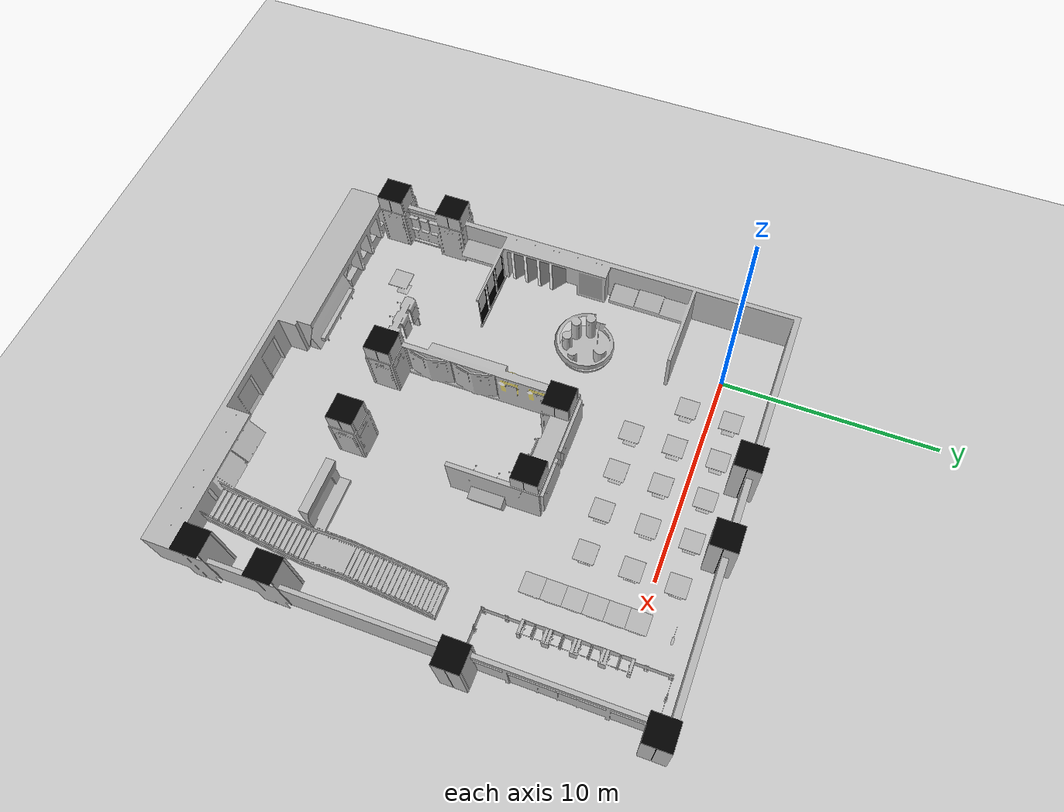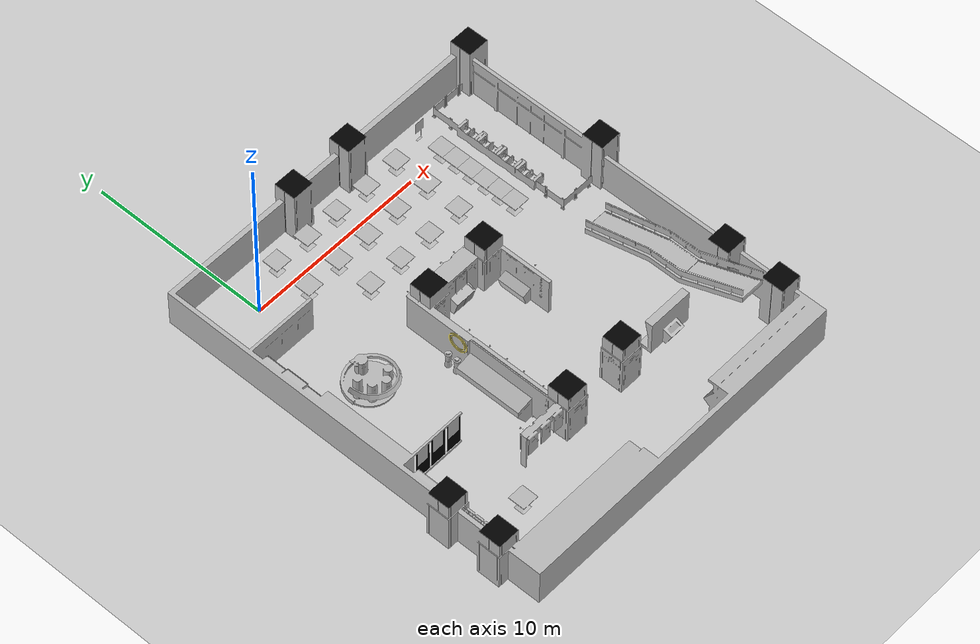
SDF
<sdf version="1.7">
 <world name="default">
  <light name="sun" type="directional">
   <pose>0 0 10 0 -0 0</pose>
   <diffuse>0.8 0.8 0.8 1</diffuse>
   <specular>0.2 0.2 0.2 1</specular>
   <attenuation>
    <range>1000</range>
    <constant>0.9</constant>
    <linear>0.01</linear>
    <quadratic>0.001</quadratic>
   </attenuation>
   <direction>-0.5 0.1 -0.9</direction>
   <spot><inner_angle>0</inner_angle><outer_angle>0</outer_angle><falloff>0</falloff></spot>
  </light>
  <model name="ground_plane">
   <static>1</static>
   <link name="link">
    <collision name="collision">
     <geometry><plane><normal>0 0 1</normal><size>100 100</size></plane></geometry>
     <surface>
      <contact><collide_bitmask>65535</collide_bitmask></contact>
      <friction><ode><mu>100</mu><mu2>50</mu2></ode></friction>
     </surface>
    </collision>
    <visual name="visual">
     <cast_shadows>0</cast_shadows>
     <geometry><plane><normal>0 0 1</normal><size>100 100</size></plane></geometry>
     <material>
      <script><uri>file://media/materials/scripts/gazebo.material</uri><name>Gazebo/Grey</name></script>
     </material>
    </visual>
   </link>
  </model>
  <gravity>0 0 -9.8</gravity>
  <magnetic_field>6e-06 2.3e-05 -4.2e-05</magnetic_field>
  <atmosphere type="adiabatic"/>
  <physics type="ode">
   <max_step_size>0.001</max_step_size>
   <real_time_factor>1</real_time_factor>
   <real_time_update_rate>1000</real_time_update_rate>
  </physics>
  <scene><ambient>0.4 0.4 0.4 1</ambient><background>0.7 0.7 0.7 1</background><shadows>1</shadows></scene>
  <spherical_coordinates>
   <surface_model>EARTH_WGS84</surface_model>
   <latitude_deg>0</latitude_deg>
   <longitude_deg>0</longitude_deg>
   <elevation>0</elevation>
   <heading_deg>0</heading_deg>
  </spherical_coordinates>
  <model name="iscas_museum">
   <link name="link">
    <inertial><mass>15</mass></inertial>
    <collision name="collision">
     <pose>0 0 0 0 0 -1.57</pose>
     <geometry><mesh><uri>model://iscas_museum/meshes/ISCAS_museum.dae</uri></mesh></geometry>
    </collision>
    <visual name="visual">
     <pose>0 0 0 0 0 -1.57</pose>
     <geometry><mesh><uri>model://iscas_museum/meshes/ISCAS_museum.dae</uri></mesh></geometry>
    </visual>
   </link>
   <static>1</static>
   <pose>6.0996 -8.91878 0 0 -0 0</pose>
  </model>
  <model name="cafe_table">
   <static>1</static>
   <link name="link">
    <collision name="surface">
     <pose>0 0 0.755 0 -0 0</pose>
     <geometry><box><size>0.913 0.913 0.04</size></box></geometry>
    </collision>
    <collision name="column">
     <pose>0 0 0.37 0 -0 0</pose>
     <geometry><box><size>0.042 0.042 0.74</size></box></geometry>
    </collision>
    <collision name="base">
     <pose>0 0 0.02 0 -0 0</pose>
     <geometry><box><size>0.56 0.56 0.04</size></box></geometry>
    </collision>
    <visual name="visual">
     <geometry><mesh><uri>model://cafe_table/meshes/cafe_table.dae</uri></mesh></geometry>
    </visual>
   </link>
   <pose>0.066765 -15.8442 0 0 -0 0</pose>
  </model>
  <model name="cafe_table_0">
   <static>1</static>
   <link name="link">
    <collision name="surface">
     <pose>0 0 0.755 0 -0 0</pose>
     <geometry><box><size>0.913 0.913 0.04</size></box></geometry>
    </collision>
    <collision name="column">
     <pose>0 0 0.37 0 -0 0</pose>
     <geometry><box><size>0.042 0.042 0.74</size></box></geometry>
    </collision>
    <collision name="base">
     <pose>0 0 0.02 0 -0 0</pose>
     <geometry><box><size>0.56 0.56 0.04</size></box></geometry>
    </collision>
    <visual name="visual">
     <geometry><mesh><uri>model://cafe_table/meshes/cafe_table.dae</uri></mesh></geometry>
    </visual>
   </link>
   <pose>2.16336 -1.0258 0 0 -0 0</pose>
  </model>
  <model name="cafe_table_1">
   <static>1</static>
   <link name="link">
    <collision name="surface">
     <pose>0 0 0.755 0 -0 0</pose>
     <geometry><box><size>0.913 0.913 0.04</size></box></geometry>
    </collision>
    <collision name="column">
     <pose>0 0 0.37 0 -0 0</pose>
     <geometry><box><size>0.042 0.042 0.74</size></box></geometry>
    </collision>
    <collision name="base">
     <pose>0 0 0.02 0 -0 0</pose>
     <geometry><box><size>0.56 0.56 0.04</size></box></geometry>
    </collision>
    <visual name="visual">
     <geometry><mesh><uri>model://cafe_table/meshes/cafe_table.dae</uri></mesh></geometry>
    </visual>
   </link>
   <pose>4.13185 -1.00544 0 0 -0 0</pose>
  </model>
  <model name="cafe_table_2">
   <static>1</static>
   <link name="link">
    <collision name="surface">
     <pose>0 0 0.755 0 -0 0</pose>
     <geometry><box><size>0.913 0.913 0.04</size></box></geometry>
    </collision>
    <collision name="column">
     <pose>0 0 0.37 0 -0 0</pose>
     <geometry><box><size>0.042 0.042 0.74</size></box></geometry>
    </collision>
    <collision name="base">
     <pose>0 0 0.02 0 -0 0</pose>
     <geometry><box><size>0.56 0.56 0.04</size></box></geometry>
    </collision>
    <visual name="visual">
     <geometry><mesh><uri>model://cafe_table/meshes/cafe_table.dae</uri></mesh></geometry>
    </visual>
   </link>
   <pose>6.06257 -1.02144 0 0 -0 0</pose>
  </model>
  <model name="cafe_table_3">
   <static>1</static>
   <link name="link">
    <collision name="surface">
     <pose>0 0 0.755 0 -0 0</pose>
     <geometry><box><size>0.913 0.913 0.04</size></box></geometry>
    </collision>
    <collision name="column">
     <pose>0 0 0.37 0 -0 0</pose>
     <geometry><box><size>0.042 0.042 0.74</size></box></geometry>
    </collision>
    <collision name="base">
     <pose>0 0 0.02 0 -0 0</pose>
     <geometry><box><size>0.56 0.56 0.04</size></box></geometry>
    </collision>
    <visual name="visual">
     <geometry><mesh><uri>model://cafe_table/meshes/cafe_table.dae</uri></mesh></geometry>
    </visual>
   </link>
   <pose>8.03934 -0.971793 0 0 -0 0</pose>
  </model>
  <model name="cafe_table_4">
   <static>1</static>
   <link name="link">
    <collision name="surface">
     <pose>0 0 0.755 0 -0 0</pose>
     <geometry><box><size>0.913 0.913 0.04</size></box></geometry>
    </collision>
    <collision name="column">
     <pose>0 0 0.37 0 -0 0</pose>
     <geometry><box><size>0.042 0.042 0.74</size></box></geometry>
    </collision>
    <collision name="base">
     <pose>0 0 0.02 0 -0 0</pose>
     <geometry><box><size>0.56 0.56 0.04</size></box></geometry>
    </collision>
    <visual name="visual">
     <geometry><mesh><uri>model://cafe_table/meshes/cafe_table.dae</uri></mesh></geometry>
    </visual>
   </link>
   <pose>10.0303 -0.99222 0 0 -0 0</pose>
  </model>
  <model name="cafe_table_5">
   <static>1</static>
   <link name="link">
    <collision name="surface">
     <pose>0 0 0.755 0 -0 0</pose>
     <geometry><box><size>0.913 0.913 0.04</size></box></geometry>
    </collision>
    <collision name="column">
     <pose>0 0 0.37 0 -0 0</pose>
     <geometry><box><size>0.042 0.042 0.74</size></box></geometry>
    </collision>
    <collision name="base">
     <pose>0 0 0.02 0 -0 0</pose>
     <geometry><box><size>0.56 0.56 0.04</size></box></geometry>
    </collision>
    <visual name="visual">
     <geometry><mesh><uri>model://cafe_table/meshes/cafe_table.dae</uri></mesh></geometry>
    </visual>
   </link>
   <pose>2.1769 0.975185 0 0 -0 0</pose>
  </model>
  <model name="cafe_table_6">
   <static>1</static>
   <link name="link">
    <collision name="surface">
     <pose>0 0 0.755 0 -0 0</pose>
     <geometry><box><size>0.913 0.913 0.04</size></box></geometry>
    </collision>
    <collision name="column">
     <pose>0 0 0.37 0 -0 0</pose>
     <geometry><box><size>0.042 0.042 0.74</size></box></geometry>
    </collision>
    <collision name="base">
     <pose>0 0 0.02 0 -0 0</pose>
     <geometry><box><size>0.56 0.56 0.04</size></box></geometry>
    </collision>
    <visual name="visual">
     <geometry><mesh><uri>model://cafe_table/meshes/cafe_table.dae</uri></mesh></geometry>
    </visual>
   </link>
   <pose>4.15 0.954269 0 0 -0 0</pose>
  </model>
  <model name="cafe_table_7">
   <static>1</static>
   <link name="link">
    <collision name="surface">
     <pose>0 0 0.755 0 -0 0</pose>
     <geometry><box><size>0.913 0.913 0.04</size></box></geometry>
    </collision>
    <collision name="column">
     <pose>0 0 0.37 0 -0 0</pose>
     <geometry><box><size>0.042 0.042 0.74</size></box></geometry>
    </collision>
    <collision name="base">
     <pose>0 0 0.02 0 -0 0</pose>
     <geometry><box><size>0.56 0.56 0.04</size></box></geometry>
    </collision>
    <visual name="visual">
     <geometry><mesh><uri>model://cafe_table/meshes/cafe_table.dae</uri></mesh></geometry>
    </visual>
   </link>
   <pose>6.0768 0.952825 0 0 -0 0</pose>
  </model>
  <model name="cafe_table_8">
   <static>1</static>
   <link name="link">
    <collision name="surface">
     <pose>0 0 0.755 0 -0 0</pose>
     <geometry><box><size>0.913 0.913 0.04</size></box></geometry>
    </collision>
    <collision name="column">
     <pose>0 0 0.37 0 -0 0</pose>
     <geometry><box><size>0.042 0.042 0.74</size></box></geometry>
    </collision>
    <collision name="base">
     <pose>0 0 0.02 0 -0 0</pose>
     <geometry><box><size>0.56 0.56 0.04</size></box></geometry>
    </collision>
    <visual name="visual">
     <geometry><mesh><uri>model://cafe_table/meshes/cafe_table.dae</uri></mesh></geometry>
    </visual>
   </link>
   <pose>8.04316 0.953874 0 0 -0 0</pose>
  </model>
  <model name="cafe_table_8_clone">
   <static>1</static>
   <link name="link">
    <collision name="surface">
     <pose>0 0 0.755 0 -0 0</pose>
     <geometry><box><size>0.913 0.913 0.04</size></box></geometry>
    </collision>
    <collision name="column">
     <pose>0 0 0.37 0 -0 0</pose>
     <geometry><box><size>0.042 0.042 0.74</size></box></geometry>
    </collision>
    <collision name="base">
     <pose>0 0 0.02 0 -0 0</pose>
     <geometry><box><size>0.56 0.56 0.04</size></box></geometry>
    </collision>
    <visual name="visual">
     <geometry><mesh><uri>model://cafe_table/meshes/cafe_table.dae</uri></mesh></geometry>
    </visual>
   </link>
   <pose>10.0551 0.963218 0 0 -0 0</pose>
  </model>
  <model name="cafe_table_9">
   <static>1</static>
   <link name="link">
    <collision name="surface">
     <pose>0 0 0.755 0 -0 0</pose>
     <geometry><box><size>0.913 0.913 0.04</size></box></geometry>
    </collision>
    <collision name="column">
     <pose>0 0 0.37 0 -0 0</pose>
     <geometry><box><size>0.042 0.042 0.74</size></box></geometry>
    </collision>
    <collision name="base">
     <pose>0 0 0.02 0 -0 0</pose>
     <geometry><box><size>0.56 0.56 0.04</size></box></geometry>
    </collision>
    <visual name="visual">
     <geometry><mesh><uri>model://cafe_table/meshes/cafe_table.dae</uri></mesh></geometry>
    </visual>
   </link>
   <pose>4.11351 -2.99864 0 0 -0 0</pose>
  </model>
  <model name="cafe_table_10">
   <static>1</static>
   <link name="link">
    <collision name="surface">
     <pose>0 0 0.755 0 -0 0</pose>
     <geometry><box><size>0.913 0.913 0.04</size></box></geometry>
    </collision>
    <collision name="column">
     <pose>0 0 0.37 0 -0 0</pose>
     <geometry><box><size>0.042 0.042 0.74</size></box></geometry>
    </collision>
    <collision name="base">
     <pose>0 0 0.02 0 -0 0</pose>
     <geometry><box><size>0.56 0.56 0.04</size></box></geometry>
    </collision>
    <visual name="visual">
     <geometry><mesh><uri>model://cafe_table/meshes/cafe_table.dae</uri></mesh></geometry>
    </visual>
   </link>
   <pose>6.06925 -3.01855 0 0 -0 0</pose>
  </model>
  <model name="cafe_table_11">
   <static>1</static>
   <link name="link">
    <collision name="surface">
     <pose>0 0 0.755 0 -0 0</pose>
     <geometry><box><size>0.913 0.913 0.04</size></box></geometry>
    </collision>
    <collision name="column">
     <pose>0 0 0.37 0 -0 0</pose>
     <geometry><box><size>0.042 0.042 0.74</size></box></geometry>
    </collision>
    <collision name="base">
     <pose>0 0 0.02 0 -0 0</pose>
     <geometry><box><size>0.56 0.56 0.04</size></box></geometry>
    </collision>
    <visual name="visual">
     <geometry><mesh><uri>model://cafe_table/meshes/cafe_table.dae</uri></mesh></geometry>
    </visual>
   </link>
   <pose>7.99595 -3.00147 0 0 -0 0</pose>
  </model>
  <model name="cafe_table_12">
   <static>1</static>
   <link name="link">
    <collision name="surface">
     <pose>0 0 0.755 0 -0 0</pose>
     <geometry><box><size>0.913 0.913 0.04</size></box></geometry>
    </collision>
    <collision name="column">
     <pose>0 0 0.37 0 -0 0</pose>
     <geometry><box><size>0.042 0.042 0.74</size></box></geometry>
    </collision>
    <collision name="base">
     <pose>0 0 0.02 0 -0 0</pose>
     <geometry><box><size>0.56 0.56 0.04</size></box></geometry>
    </collision>
    <visual name="visual">
     <geometry><mesh><uri>model://cafe_table/meshes/cafe_table.dae</uri></mesh></geometry>
    </visual>
   </link>
   <pose>9.96397 -3.00295 0 0 -0 0</pose>
  </model>
  <model name="cafe_table_13">
   <static>1</static>
   <link name="link">
    <collision name="surface">
     <pose>0 0 0.755 0 -0 0</pose>
     <geometry><box><size>0.913 0.913 0.04</size></box></geometry>
    </collision>
    <collision name="column">
     <pose>0 0 0.37 0 -0 0</pose>
     <geometry><box><size>0.042 0.042 0.74</size></box></geometry>
    </collision>
    <collision name="base">
     <pose>0 0 0.02 0 -0 0</pose>
     <geometry><box><size>0.56 0.56 0.04</size></box></geometry>
    </collision>
    <visual name="visual">
     <geometry><mesh><uri>model://cafe_table/meshes/cafe_table.dae</uri></mesh></geometry>
    </visual>
   </link>
   <pose>12.0103 -0.069181 0 0 -0 0</pose>
  </model>
  <model name="cafe_table_14">
   <static>1</static>
   <link name="link">
    <collision name="surface">
     <pose>0 0 0.755 0 -0 0</pose>
     <geometry><box><size>0.913 0.913 0.04</size></box></geometry>
    </collision>
    <collision name="column">
     <pose>0 0 0.37 0 -0 0</pose>
     <geometry><box><size>0.042 0.042 0.74</size></box></geometry>
    </collision>
    <collision name="base">
     <pose>0 0 0.02 0 -0 0</pose>
     <geometry><box><size>0.56 0.56 0.04</size></box></geometry>
    </collision>
    <visual name="visual">
     <geometry><mesh><uri>model://cafe_table/meshes/cafe_table.dae</uri></mesh></geometry>
    </visual>
   </link>
   <pose>12.0094 -0.974992 0 0 -0 0</pose>
  </model>
  <model name="cafe_table_15">
   <static>1</static>
   <link name="link">
    <collision name="surface">
     <pose>0 0 0.755 0 -0 0</pose>
     <geometry><box><size>0.913 0.913 0.04</size></box></geometry>
    </collision>
    <collision name="column">
     <pose>0 0 0.37 0 -0 0</pose>
     <geometry><box><size>0.042 0.042 0.74</size></box></geometry>
    </collision>
    <collision name="base">
     <pose>0 0 0.02 0 -0 0</pose>
     <geometry><box><size>0.56 0.56 0.04</size></box></geometry>
    </collision>
    <visual name="visual">
     <geometry><mesh><uri>model://cafe_table/meshes/cafe_table.dae</uri></mesh></geometry>
    </visual>
   </link>
   <pose>12.0085 -1.88023 0 0 -0 0</pose>
  </model>
  <model name="cafe_table_16">
   <static>1</static>
   <link name="link">
    <collision name="surface">
     <pose>0 0 0.755 0 -0 0</pose>
     <geometry><box><size>0.913 0.913 0.04</size></box></geometry>
    </collision>
    <collision name="column">
     <pose>0 0 0.37 0 -0 0</pose>
     <geometry><box><size>0.042 0.042 0.74</size></box></geometry>
    </collision>
    <collision name="base">
     <pose>0 0 0.02 0 -0 0</pose>
     <geometry><box><size>0.56 0.56 0.04</size></box></geometry>
    </collision>
    <visual name="visual">
     <geometry><mesh><uri>model://cafe_table/meshes/cafe_table.dae</uri></mesh></geometry>
    </visual>
   </link>
   <pose>12.0077 -2.78476 0 0 -0 0</pose>
  </model>
  <model name="cafe_table_17">
   <static>1</static>
   <link name="link">
    <collision name="surface">
     <pose>0 0 0.755 0 -0 0</pose>
     <geometry><box><size>0.913 0.913 0.04</size></box></geometry>
    </collision>
    <collision name="column">
     <pose>0 0 0.37 0 -0 0</pose>
     <geometry><box><size>0.042 0.042 0.74</size></box></geometry>
    </collision>
    <collision name="base">
     <pose>0 0 0.02 0 -0 0</pose>
     <geometry><box><size>0.56 0.56 0.04</size></box></geometry>
    </collision>
    <visual name="visual">
     <geometry><mesh><uri>model://cafe_table/meshes/cafe_table.dae</uri></mesh></geometry>
    </visual>
   </link>
   <pose>12.0071 -3.66254 0 0 -0 0</pose>
  </model>
  <model name="cafe_table_18">
   <static>1</static>
   <link name="link">
    <collision name="surface">
     <pose>0 0 0.755 0 -0 0</pose>
     <geometry><box><size>0.913 0.913 0.04</size></box></geometry>
    </collision>
    <collision name="column">
     <pose>0 0 0.37 0 -0 0</pose>
     <geometry><box><size>0.042 0.042 0.74</size></box></geometry>
    </collision>
    <collision name="base">
     <pose>0 0 0.02 0 -0 0</pose>
     <geometry><box><size>0.56 0.56 0.04</size></box></geometry>
    </collision>
    <visual name="visual">
     <geometry><mesh><uri>model://cafe_table/meshes/cafe_table.dae</uri></mesh></geometry>
    </visual>
   </link>
   <pose>12.0044 -4.56941 0 0 -0 0</pose>
  </model>
 </world>
</sdf>
